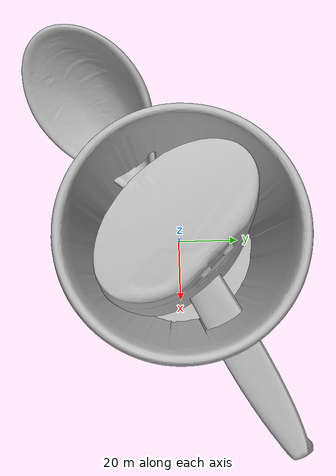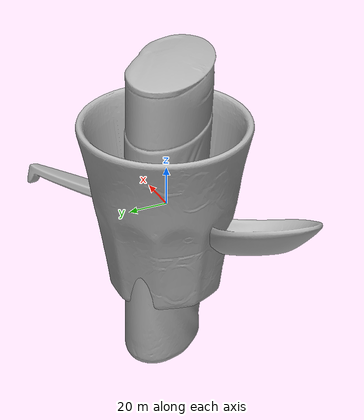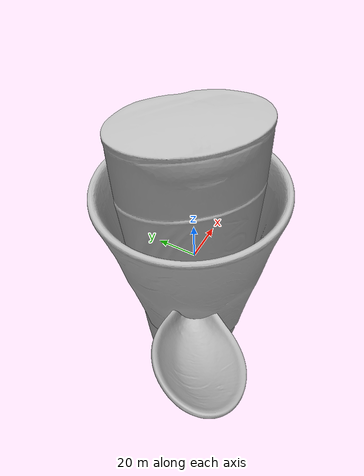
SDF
<sdf version="1.4">
 <world name="default">
  <light name="light1" type="point">
   <pose>0 0 1 0 0 0</pose>
   <diffuse>3 3 3 1</diffuse>
   <specular>3 3 3 1</specular>
  </light>
  <light name="light2" type="point">
   <pose>0 0.5 2 0 0 0</pose>
   <diffuse>1 1 1 1</diffuse>
   <specular>1 1 1 1</specular>
  </light>
  <light name="light3" type="point">
   <pose>0 0.5 2 0 0 0</pose>
   <diffuse>3 3 3 1</diffuse>
   <specular>3 3 3 1</specular>
  </light>
  <scene><ambient>0.7 0.7 0.7</ambient></scene>
  <model name="bottle1">
   <link name="link_bottle1">
    <collision name="default">
     <geometry>
      <mesh><uri>model://conditioner/collision_meshes/collision.obj</uri><scale>1.0 1.0 1.0</scale></mesh>
     </geometry>
     <surface>
      <friction><ode><mu>0.5</mu><mu2>0.5</mu2></ode></friction>
      <contact><ode><max_vel>0</max_vel><min_depth>0.0001</min_depth><kp>1e8</kp></ode></contact>
     </surface>
    </collision>
    <visual name="default">
     <geometry>
      <mesh><uri>model://conditioner/visual_meshes/visual.dae</uri><scale>1.0 1.0 1.0</scale></mesh>
     </geometry>
    </visual>
    <inertial>
     <mass>0.31316134333610535</mass>
     <pose>-0.00055994390277192 -0.0001729748910292983 0.004359682556241751 -0.005038373535624127 0.01530604069317056 0.015072338587352078</pose>
     <inertia>
      <ixx>0.0006812382</ixx>
      <iyy>0.000729753</iyy>
      <izz>0.000105037434</izz>
      <ixy>0</ixy>
      <ixz>0</ixz>
      <iyz>0</iyz>
     </inertia>
    </inertial>
   </link>
   <pose>0.013503667898476124 0.14034977555274963 0.08122975379228592 0.03689292077696239 -0.015660415412914665 -0.8318912010238234</pose>
  </model>
  <model name="bottle2">
   <link name="link_bottle2">
    <collision name="default">
     <geometry>
      <mesh><uri>model://pigeon/collision_meshes/collision.obj</uri><scale>1.0 1.0 1.0</scale></mesh>
     </geometry>
     <surface>
      <friction><ode><mu>0.5</mu><mu2>0.5</mu2></ode></friction>
      <contact><ode><max_vel>0</max_vel><min_depth>0.0001</min_depth><kp>1e8</kp></ode></contact>
     </surface>
    </collision>
    <visual name="default">
     <geometry><mesh><uri>model://pigeon/visual_meshes/visual.dae</uri><scale>1.0 1.0 1.0</scale></mesh></geometry>
    </visual>
    <inertial>
     <mass>0.6510184407234192</mass>
     <pose>-9.675473847892135e-05 -0.00019276776583865285 -0.01593620888888836 -0.011704407543161608 -0.0012978192378484078 -0.04198827283679603</pose>
     <inertia>
      <ixx>0.0016273881</ixx>
      <iyy>0.0017372583</iyy>
      <izz>0.00033475916</izz>
      <ixy>0</ixy>
      <ixz>0</ixz>
      <iyz>0</iyz>
     </inertia>
    </inertial>
   </link>
   <pose>-0.07046326249837875 -0.1276513934135437 0.09864506125450134 0.00014126038624236075 4.240105550674e-05 -1.5304117655784126</pose>
  </model>
  <model name="silverware1">
   <link name="link_silverware1">
    <collision name="default">
     <geometry>
      <mesh><uri>model://doraemon_spoon/collision_meshes/collision.obj</uri><scale>1.0 1.0 1.0</scale></mesh>
     </geometry>
     <surface>
      <friction><ode><mu>0.5</mu><mu2>0.5</mu2></ode></friction>
      <contact><ode><max_vel>0</max_vel><min_depth>0.0001</min_depth><kp>1e8</kp></ode></contact>
     </surface>
    </collision>
    <visual name="default">
     <geometry>
      <mesh><uri>model://doraemon_spoon/visual_meshes/visual.dae</uri><scale>1.0 1.0 1.0</scale></mesh>
     </geometry>
    </visual>
    <inertial>
     <mass>0.020366016775369644</mass>
     <pose>-0.022165074944496155 -0.0006374584045261145 -0.0033325462136417627 -0.009147200915366215 0.0738041822243956 -0.014123826891092987</pose>
     <inertia>
      <ixx>1.5952605e-06</ixx>
      <iyy>4.5307766e-05</iyy>
      <izz>4.6078047e-05</izz>
      <ixy>0</ixy>
      <ixz>0</ixz>
      <iyz>0</iyz>
     </inertia>
    </inertial>
   </link>
   <pose>0.2108764946460724 -0.35098373889923096 0.014739351347088814 0.2790358448716409 -0.010337154410113654 0.5038981948450079</pose>
  </model>
  <model name="stationery1">
   <link name="link_stationery1">
    <collision name="default">
     <geometry>
      <mesh><uri>model://correction_fuid/collision_meshes/collision.obj</uri><scale>1.0 1.0 1.0</scale></mesh>
     </geometry>
     <surface>
      <friction><ode><mu>0.5</mu><mu2>0.5</mu2></ode></friction>
      <contact><ode><max_vel>0</max_vel><min_depth>0.0001</min_depth><kp>1e8</kp></ode></contact>
     </surface>
    </collision>
    <visual name="default">
     <geometry>
      <mesh><uri>model://correction_fuid/visual_meshes/visual.dae</uri><scale>1.0 1.0 1.0</scale></mesh>
     </geometry>
    </visual>
    <inertial>
     <mass>0.02487199380993843</mass>
     <pose>-0.00012557733862195164 -0.0009722901741042733 -0.001618212671019137 -0.010846607936808557 0.019488255039962172 -0.015992454917835536</pose>
     <inertia>
      <ixx>2.4088951e-05</ixx>
      <iyy>1.4578937e-06</iyy>
      <izz>2.4715917e-05</izz>
      <ixy>0</ixy>
      <ixz>0</ixz>
      <iyz>0</iyz>
     </inertia>
    </inertial>
   </link>
   <pose>0.2025185227394104 0.003769735572859645 0.009632832370698452 -0.00172714663097261 -0.056168691641073236 -2.131030199327589</pose>
  </model>
  <model name="bowl1">
   <link name="link_bowl1">
    <collision name="default">
     <geometry>
      <mesh><uri>model://doraemon_bowl/collision_meshes/collision.obj</uri><scale>1.0 1.0 1.0</scale></mesh>
     </geometry>
     <surface>
      <friction><ode><mu>0.5</mu><mu2>0.5</mu2></ode></friction>
      <contact><ode><max_vel>0</max_vel><min_depth>0.0001</min_depth><kp>1e8</kp></ode></contact>
     </surface>
    </collision>
    <visual name="default">
     <geometry>
      <mesh><uri>model://doraemon_bowl/visual_meshes/visual.dae</uri><scale>1.0 1.0 1.0</scale></mesh>
     </geometry>
    </visual>
    <inertial>
     <mass>0.06713785231113434</mass>
     <pose>-0.014629548415541649 0.000485710974317044 -0.0020864871330559254 -0.005093962398800634 -0.10568405274446478 -0.026426476578293747</pose>
     <inertia>
      <ixx>9.309732e-05</ixx>
      <iyy>0.00012251528</iyy>
      <izz>0.00018024874</izz>
      <ixy>0</ixy>
      <ixz>0</ixz>
      <iyz>0</iyz>
     </inertia>
    </inertial>
   </link>
   <pose>0.06994258612394333 -0.024789243936538696 0.025905495509505272 0.008593261046660592 0.00634353955478531 0.08554562574844841</pose>
  </model>
  <model name="cup1">
   <link name="link_cup1">
    <collision name="default">
     <geometry>
      <mesh><uri>model://hello_kitty_cup/collision_meshes/collision.obj</uri><scale>1.0 1.0 1.0</scale></mesh>
     </geometry>
     <surface>
      <friction><ode><mu>0.5</mu><mu2>0.5</mu2></ode></friction>
      <contact><ode><max_vel>0</max_vel><min_depth>0.0001</min_depth><kp>1e8</kp></ode></contact>
     </surface>
    </collision>
    <visual name="default">
     <geometry>
      <mesh><uri>model://hello_kitty_cup/visual_meshes/visual.dae</uri><scale>1.0 1.0 1.0</scale></mesh>
     </geometry>
    </visual>
    <inertial>
     <mass>0.13384777307510376</mass>
     <pose>0.00027251095161773264 0.00027950218645855784 0.0030449770856648684 0.057791450277227645 0.007964955326408191 -0.02045228086216793</pose>
     <inertia>
      <ixx>0.0001843247</ixx>
      <iyy>0.0001863793</iyy>
      <izz>0.00015541737</izz>
      <ixy>0</ixy>
      <ixz>0</ixz>
      <iyz>0</iyz>
     </inertia>
    </inertial>
   </link>
   <pose>0.16096366941928864 0.35666000843048096 0.04621630907058716 -0.005880049882789823 0.01079827993190752 1.4231027641091138</pose>
  </model>
  <model name="plate1">
   <link name="link_plate1">
    <collision name="default">
     <geometry>
      <mesh><uri>model://hello_kitty_plate/collision_meshes/collision.obj</uri><scale>1.0 1.0 1.0</scale></mesh>
     </geometry>
     <surface>
      <friction><ode><mu>0.5</mu><mu2>0.5</mu2></ode></friction>
      <contact><ode><max_vel>0</max_vel><min_depth>0.0001</min_depth><kp>1e8</kp></ode></contact>
     </surface>
    </collision>
    <visual name="default">
     <geometry>
      <mesh><uri>model://hello_kitty_plate/visual_meshes/visual.dae</uri><scale>1.0 1.0 1.0</scale></mesh>
     </geometry>
    </visual>
    <inertial>
     <mass>0.0821625292301178</mass>
     <pose>0.0073142931796610355 0.00028937371098436415 -0.0027947186026722193 -0.0001043184795654353 -0.007054440405958318 -0.014449014916312054</pose>
     <inertia>
      <ixx>0.00015843393</ixx>
      <iyy>0.00029901267</iyy>
      <izz>0.00045402072</izz>
      <ixy>0</ixy>
      <ixz>0</ixz>
      <iyz>0</iyz>
     </inertia>
    </inertial>
   </link>
   <pose>0.14098425209522247 -0.17466136813163757 0.008291437290608883 0.00046639209966622486 0.004173392082958943 -0.8590026790096191</pose>
  </model>
  <physics type="ode">
   <max_contacts>50</max_contacts>
   <ode>
    <solver><type>quick</type><iters>75</iters></solver>
    <constraints>
     <contact_max_correcting_vel>0</contact_max_correcting_vel>
     <contact_surface_layer>0</contact_surface_layer>
    </constraints>
   </ode>
  </physics>
 </world>
</sdf>
